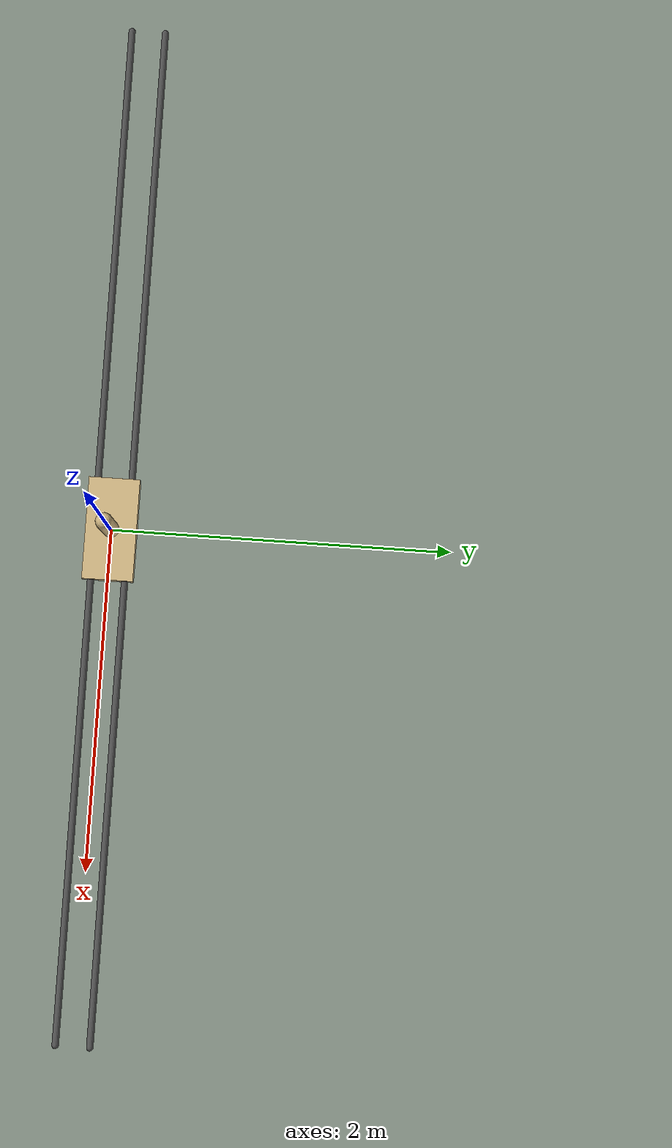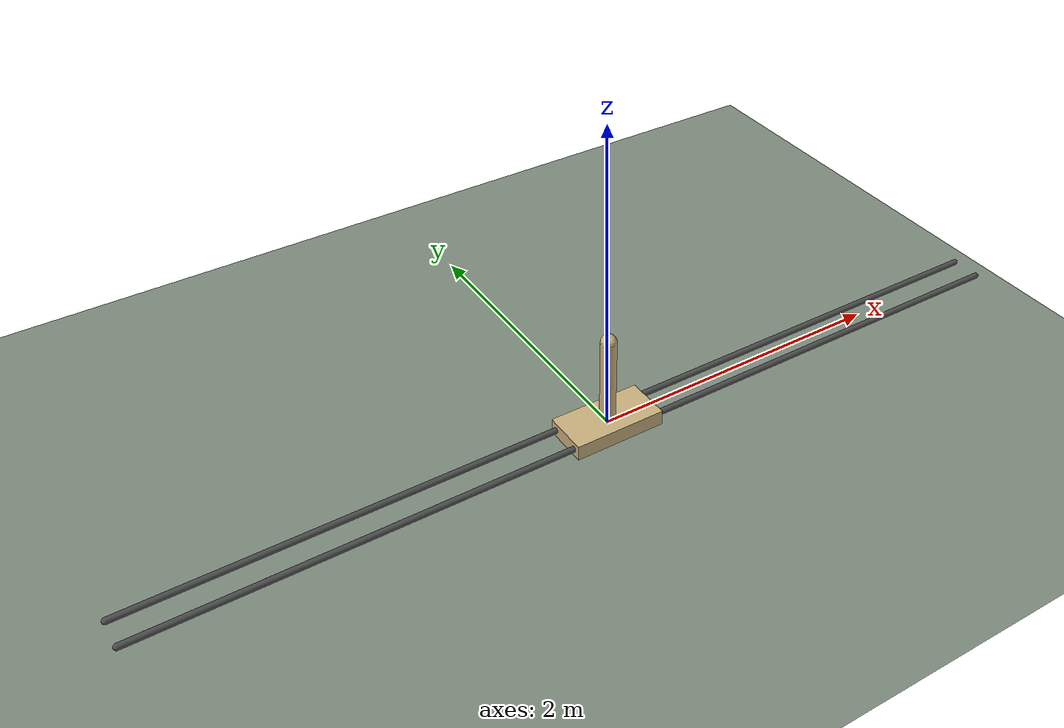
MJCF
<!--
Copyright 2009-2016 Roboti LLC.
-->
<mujoco model="cart-pole (v1.31)">
	<size njmax="6"/>
    <compiler inertiafromgeom="true" angle="radian"/>
	<option	timestep="0.01"/>

	<asset>
		<material name="MatViz" specular="1" shininess=".1" reflectance="0.5" rgba=".8 .7 .5 1"/>
		<material name="MatGnd" specular="1" shininess=".3" reflectance="0.5" rgba=".5 .55 .5 1"/>
	</asset>

    <default>
        <geom contype="0" margin="0.01" material="MatViz" />
		<joint limited="true" damping="0.05" armature=".001" margin="0.01" frictionloss="0.001"/>
    </default>

    <worldbody>
		<light directional="true" cutoff="4" exponent="20" diffuse="1 1 1" specular="0 0 0" pos="0 .3 2.5" dir="0 -.3 -2.5 "/>

		<geom name="ground" type="plane" pos="0 0 -.7" contype="1" conaffinity="1" size="4 4 16" material="MatGnd"/>
        <geom name="rail1" type="capsule" pos="0 0.1 0" quat="0.707 0 0.707 0" size="0.02 3" rgba="0.3 0.3 0.3 1" />
		<geom name="rail2" type="capsule" pos="0 -.1 0" quat="0.707 0 0.707 0" size="0.02 3" rgba="0.3 0.3 0.3 1" />

        <body name="cart" pos="0 0 0">
            <joint name="slider" type="slide" pos="0 0 0" axis="1 0 0" range="-3 3"/>
            <geom name="cart" type="box" pos="0 0 0" quat="0.707 0 0.707 0" size="0.05 0.15 .3" />
            <body name="pole" pos="0 0 0">
                <joint name="hinge" type="hinge" pos="0 0 0" axis="0 1 0" limited="false" />
                <geom name="pole" type="capsule" fromto="0 0 0 0.01 0 0.6" size="0.05 0.3" />
            </body>
        </body>
    </worldbody>

    <actuator>
        <motor name="slide" joint="slider" gear="100" ctrllimited="true" ctrlrange="-3 3"/>
    </actuator>

</mujoco>
